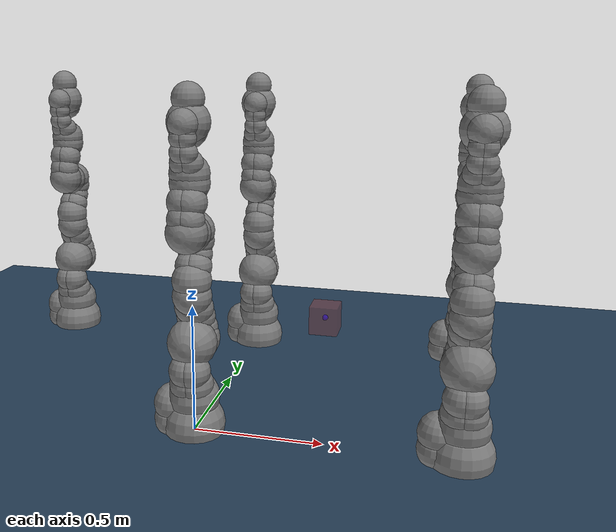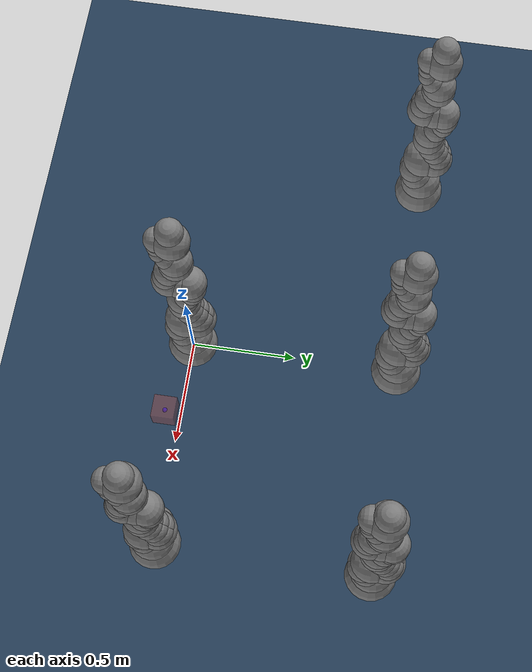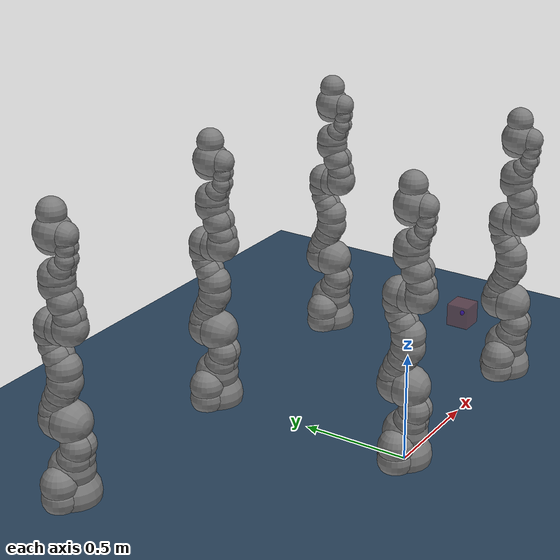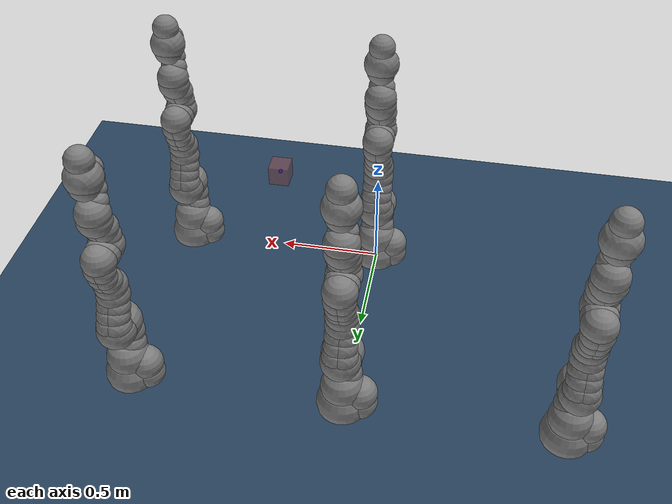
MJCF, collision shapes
<mujoco model="iiwa14 scene">
  <include file="combined_model.xml" />

  <statistic center="0.2 0 0.2" extent="1.0" />

  <visual>
    <headlight diffuse="0.6 0.6 0.6" ambient="0.3 0.3 0.3" specular="0 0 0" />
    <rgba haze="0.15 0.25 0.35 1" />
    <global azimuth="-120" elevation="-20" />
  </visual>

  <asset>
    <texture type="skybox" builtin="gradient" rgb1="0.3 0.5 0.7" rgb2="0 0 0" width="512" height="3072" />
    <texture type="2d" name="groundplane" builtin="checker" mark="edge" rgb1="0.2 0.3 0.4" rgb2="0.1 0.2 0.3" markrgb="0.8 0.8 0.8" width="300" height="300" />
    <material name="groundplane" texture="groundplane" texuniform="true" texrepeat="5 5" reflectance="0.2" />
  </asset>

  <worldbody>
    <light pos="0 0 1.5" dir="0 0 -1" directional="true" />
    <geom name="floor" size="0 0 0.05" type="plane" material="groundplane" />
    <body name="target" pos="0.5 0 .5" quat="0 1 0 0" mocap="true">
      <geom type="box" size=".05 .05 .05" contype="0" conaffinity="0" rgba=".6 .3 .3 .5" />
      <site type="sphere" size="0.01" rgba="0 0 1 1" group="1" />
    </body>
  </worldbody>
</mujoco>

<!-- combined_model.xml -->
<mujoco><compiler angle="radian" meshdir="assets" autolimits="true" />

  <option integrator="implicitfast" />

  <asset>
    <material class="iiwa" name="gray" rgba="0.4 0.4 0.4 1" />
    <material class="iiwa" name="light_gray" rgba="0.6 0.6 0.6 1" />
    <material class="iiwa" name="black" rgba="0 0 0 1" />
    <material class="iiwa" name="orange" rgba="1 0.423529 0.0392157 1" />

    <mesh file="link_0.obj" />
    <mesh file="link_1.obj" />
    <mesh file="link_2_orange.obj" />
    <mesh file="link_2_grey.obj" />
    <mesh file="link_3.obj" />
    <mesh file="band.obj" />
    <mesh file="kuka.obj" />
    <mesh file="link_4_orange.obj" />
    <mesh file="link_4_grey.obj" />
    <mesh file="link_5.obj" />
    <mesh file="link_6_orange.obj" />
    <mesh file="link_6_grey.obj" />
    <mesh file="link_7.obj" />
  </asset>

  <worldbody><body name="base_copy_0" childclass="iiwa" pos="0 0 0">
      <inertial mass="5" pos="-0.1 0 0.07" diaginertia="0.05 0.06 0.03" />
      <geom class="visual" mesh="link_0" />
      <geom class="collision" size="0.12" pos="0 0 0.03" />
      <geom class="collision" size="0.08" pos="-0.08 0 0.103" />
      <geom class="collision" size="0.08" pos="-0.08 0 0.04" />
      <geom class="collision" size="0.1" pos="0 0 0.14" />
      <body name="link1_copy_0" pos="0 0 0.1575">
        <inertial mass="5.76" pos="0 -0.03 0.12" diaginertia="0.0333 0.033 0.0123" />
        <joint name="joint1_copy_0" class="joint1" />
        <geom class="visual" mesh="link_1" />
        <geom class="collision" size="0.08" pos="0 0 -0.0005" />
        <geom class="collision" size="0.075" pos="0.01 -0.025 0.0425" />
        <geom class="collision" size="0.075" pos="-0.01 -0.025 0.0425" />
        <geom class="collision" size="0.07" pos="0.01 -0.045 0.1025" />
        <geom class="collision" size="0.07" pos="-0.01 -0.045 0.1025" />
        <body name="link2_copy_0" pos="0 0 0.2025" quat="0 0 1 1">
          <inertial mass="6.35" pos="0.0003 0.059 0.042" diaginertia="0.0305 0.0304 0.011" quat="0 0 1 1" />
          <joint name="joint2_copy_0" class="joint2" />
          <geom class="visual" material="orange" mesh="link_2_orange" />
          <geom class="visual" mesh="link_2_grey" />
          <geom class="collision" size="0.095" pos="0 0 -0.01" />
          <geom class="collision" size="0.09" pos="0 0 0.045" />
          <geom class="collision" size="0.07" pos="-0.01 0.04 0.054" />
          <geom class="collision" size="0.065" pos="-0.01 0.09 0.04" />
          <geom class="collision" size="0.065" pos="-0.01 0.13 0.02" />
          <geom class="collision" size="0.07" pos="0.01 0.04 0.054" />
          <geom class="collision" size="0.065" pos="0.01 0.09 0.04" />
          <geom class="collision" size="0.065" pos="0.01 0.13 0.02" />
          <geom class="collision" size="0.075" pos="0 0.18 0" />
          <body name="link3_copy_0" pos="0 0.2045 0" quat="0 0 1 1">
            <inertial mass="3.5" pos="0 0.03 0.13" diaginertia="0.025 0.0238 0.0076" />
            <joint name="joint3_copy_0" class="joint1" />
            <geom class="visual" mesh="link_3" />
            <geom class="visual" material="light_gray" mesh="band" />
            <geom class="visual" material="black" mesh="kuka" />
            <geom class="collision" size="0.075" pos="0 0 0.0355" />
            <geom class="collision" size="0.06" pos="0.01 0.023 0.0855" />
            <geom class="collision" size="0.055" pos="0.01 0.048 0.1255" />
            <geom class="collision" size="0.06" pos="0.01 0.056 0.1755" />
            <geom class="collision" size="0.06" pos="-0.01 0.023 0.0855" />
            <geom class="collision" size="0.055" pos="-0.01 0.048 0.1255" />
            <geom class="collision" size="0.06" pos="-0.01 0.056 0.1755" />
            <geom class="collision" size="0.075" pos="0 0.045 0.2155" />
            <geom class="collision" size="0.075" pos="0 0 0.2155" />
            <body name="link4_copy_0" pos="0 0 0.2155" quat="1 1 0 0">
              <inertial mass="3.5" pos="0 0.067 0.034" diaginertia="0.017 0.0164 0.006" quat="1 1 0 0" />
              <joint name="joint4_copy_0" class="joint2" />
              <geom class="visual" material="orange" mesh="link_4_orange" />
              <geom class="visual" mesh="link_4_grey" />
              <geom class="collision" size="0.078" pos="0 0.01 0.046" />
              <geom class="collision" size="0.06" pos="0.01 0.06 0.052" />
              <geom class="collision" size="0.065" pos="0.01 0.12 0.034" />
              <geom class="collision" size="0.06" pos="-0.01 0.06 0.052" />
              <geom class="collision" size="0.065" pos="-0.01 0.12 0.034" />
              <geom class="collision" size="0.075" pos="0 0.184 0" />
              <body name="link5_copy_0" pos="0 0.1845 0" quat="0 0 1 1">
                <inertial mass="3.5" pos="0.0001 0.021 0.076" diaginertia="0.01 0.0087 0.00449" />
                <joint name="joint5_copy_0" class="joint1" />
                <geom class="visual" mesh="link_5" />
                <geom class="visual" material="light_gray" mesh="band" />
                <geom class="visual" material="black" mesh="kuka" />
                <geom class="collision" size="0.075" pos="0 0 0.0335" />
                <geom class="collision" size="0.05" pos="-0.012 0.031 0.0755" />
                <geom class="collision" size="0.05" pos="0.012 0.031 0.0755" />
                <geom class="collision" size="0.04" pos="-0.012 0.06 0.1155" />
                <geom class="collision" size="0.04" pos="0.012 0.06 0.1155" />
                <geom class="collision" size="0.04" pos="-0.01 0.065 0.1655" />
                <geom class="collision" size="0.04" pos="0.01 0.065 0.1655" />
                <geom class="collision" size="0.035" pos="-0.012 0.065 0.1855" />
                <geom class="collision" size="0.035" pos="0.012 0.065 0.1855" />
                <body name="link6_copy_0" pos="0 0 0.2155" quat="1 1 0 0">
                  <inertial mass="1.8" pos="0 0.0006 0.0004" diaginertia="0.0049 0.0047 0.0036" quat="1 1 0 0" />
                  <joint name="joint6_copy_0" class="joint2" />
                  <geom class="visual" material="orange" mesh="link_6_orange" />
                  <geom class="visual" mesh="link_6_grey" />
                  <geom class="collision" size="0.055" pos="0 0 -0.059" />
                  <geom class="collision" size="0.065" pos="0 -0.03 0.011" />
                  <geom class="collision" size="0.08" />
                  <body name="link7_copy_0" pos="0 0.081 0" quat="0 0 1 1">
                    <inertial mass="1.2" pos="0 0 0.02" diaginertia="0.001 0.001 0.001" />
                    <joint name="joint7_copy_0" class="joint3" />
                    <geom class="visual" mesh="link_7" />
                    <geom class="collision" size="0.06" pos="0 0 0.001" />
                    <site pos="0 0 0.045" name="attachment_site_copy_0" />
                  </body>
                </body>
              </body>
            </body>
          </body>
        </body>
      </body>
    </body>
  <body name="base_copy_1" childclass="iiwa" pos="1 0 0">
      <inertial mass="5" pos="-0.1 0 0.07" diaginertia="0.05 0.06 0.03" />
      <geom class="visual" mesh="link_0" />
      <geom class="collision" size="0.12" pos="0 0 0.03" />
      <geom class="collision" size="0.08" pos="-0.08 0 0.103" />
      <geom class="collision" size="0.08" pos="-0.08 0 0.04" />
      <geom class="collision" size="0.1" pos="0 0 0.14" />
      <body name="link1_copy_1" pos="0 0 0.1575">
        <inertial mass="5.76" pos="0 -0.03 0.12" diaginertia="0.0333 0.033 0.0123" />
        <joint name="joint1_copy_1" class="joint1" />
        <geom class="visual" mesh="link_1" />
        <geom class="collision" size="0.08" pos="0 0 -0.0005" />
        <geom class="collision" size="0.075" pos="0.01 -0.025 0.0425" />
        <geom class="collision" size="0.075" pos="-0.01 -0.025 0.0425" />
        <geom class="collision" size="0.07" pos="0.01 -0.045 0.1025" />
        <geom class="collision" size="0.07" pos="-0.01 -0.045 0.1025" />
        <body name="link2_copy_1" pos="0 0 0.2025" quat="0 0 1 1">
          <inertial mass="6.35" pos="0.0003 0.059 0.042" diaginertia="0.0305 0.0304 0.011" quat="0 0 1 1" />
          <joint name="joint2_copy_1" class="joint2" />
          <geom class="visual" material="orange" mesh="link_2_orange" />
          <geom class="visual" mesh="link_2_grey" />
          <geom class="collision" size="0.095" pos="0 0 -0.01" />
          <geom class="collision" size="0.09" pos="0 0 0.045" />
          <geom class="collision" size="0.07" pos="-0.01 0.04 0.054" />
          <geom class="collision" size="0.065" pos="-0.01 0.09 0.04" />
          <geom class="collision" size="0.065" pos="-0.01 0.13 0.02" />
          <geom class="collision" size="0.07" pos="0.01 0.04 0.054" />
          <geom class="collision" size="0.065" pos="0.01 0.09 0.04" />
          <geom class="collision" size="0.065" pos="0.01 0.13 0.02" />
          <geom class="collision" size="0.075" pos="0 0.18 0" />
          <body name="link3_copy_1" pos="0 0.2045 0" quat="0 0 1 1">
            <inertial mass="3.5" pos="0 0.03 0.13" diaginertia="0.025 0.0238 0.0076" />
            <joint name="joint3_copy_1" class="joint1" />
            <geom class="visual" mesh="link_3" />
            <geom class="visual" material="light_gray" mesh="band" />
            <geom class="visual" material="black" mesh="kuka" />
            <geom class="collision" size="0.075" pos="0 0 0.0355" />
            <geom class="collision" size="0.06" pos="0.01 0.023 0.0855" />
            <geom class="collision" size="0.055" pos="0.01 0.048 0.1255" />
            <geom class="collision" size="0.06" pos="0.01 0.056 0.1755" />
            <geom class="collision" size="0.06" pos="-0.01 0.023 0.0855" />
            <geom class="collision" size="0.055" pos="-0.01 0.048 0.1255" />
            <geom class="collision" size="0.06" pos="-0.01 0.056 0.1755" />
            <geom class="collision" size="0.075" pos="0 0.045 0.2155" />
            <geom class="collision" size="0.075" pos="0 0 0.2155" />
            <body name="link4_copy_1" pos="0 0 0.2155" quat="1 1 0 0">
              <inertial mass="3.5" pos="0 0.067 0.034" diaginertia="0.017 0.0164 0.006" quat="1 1 0 0" />
              <joint name="joint4_copy_1" class="joint2" />
              <geom class="visual" material="orange" mesh="link_4_orange" />
              <geom class="visual" mesh="link_4_grey" />
              <geom class="collision" size="0.078" pos="0 0.01 0.046" />
              <geom class="collision" size="0.06" pos="0.01 0.06 0.052" />
              <geom class="collision" size="0.065" pos="0.01 0.12 0.034" />
              <geom class="collision" size="0.06" pos="-0.01 0.06 0.052" />
              <geom class="collision" size="0.065" pos="-0.01 0.12 0.034" />
              <geom class="collision" size="0.075" pos="0 0.184 0" />
              <body name="link5_copy_1" pos="0 0.1845 0" quat="0 0 1 1">
                <inertial mass="3.5" pos="0.0001 0.021 0.076" diaginertia="0.01 0.0087 0.00449" />
                <joint name="joint5_copy_1" class="joint1" />
                <geom class="visual" mesh="link_5" />
                <geom class="visual" material="light_gray" mesh="band" />
                <geom class="visual" material="black" mesh="kuka" />
                <geom class="collision" size="0.075" pos="0 0 0.0335" />
                <geom class="collision" size="0.05" pos="-0.012 0.031 0.0755" />
                <geom class="collision" size="0.05" pos="0.012 0.031 0.0755" />
                <geom class="collision" size="0.04" pos="-0.012 0.06 0.1155" />
                <geom class="collision" size="0.04" pos="0.012 0.06 0.1155" />
                <geom class="collision" size="0.04" pos="-0.01 0.065 0.1655" />
                <geom class="collision" size="0.04" pos="0.01 0.065 0.1655" />
                <geom class="collision" size="0.035" pos="-0.012 0.065 0.1855" />
                <geom class="collision" size="0.035" pos="0.012 0.065 0.1855" />
                <body name="link6_copy_1" pos="0 0 0.2155" quat="1 1 0 0">
                  <inertial mass="1.8" pos="0 0.0006 0.0004" diaginertia="0.0049 0.0047 0.0036" quat="1 1 0 0" />
                  <joint name="joint6_copy_1" class="joint2" />
                  <geom class="visual" material="orange" mesh="link_6_orange" />
                  <geom class="visual" mesh="link_6_grey" />
                  <geom class="collision" size="0.055" pos="0 0 -0.059" />
                  <geom class="collision" size="0.065" pos="0 -0.03 0.011" />
                  <geom class="collision" size="0.08" />
                  <body name="link7_copy_1" pos="0 0.081 0" quat="0 0 1 1">
                    <inertial mass="1.2" pos="0 0 0.02" diaginertia="0.001 0.001 0.001" />
                    <joint name="joint7_copy_1" class="joint3" />
                    <geom class="visual" mesh="link_7" />
                    <geom class="collision" size="0.06" pos="0 0 0.001" />
                    <site pos="0 0 0.045" name="attachment_site_copy_1" />
                  </body>
                </body>
              </body>
            </body>
          </body>
        </body>
      </body>
    </body>
  <body name="base_copy_2" childclass="iiwa" pos="1 1 0">
      <inertial mass="5" pos="-0.1 0 0.07" diaginertia="0.05 0.06 0.03" />
      <geom class="visual" mesh="link_0" />
      <geom class="collision" size="0.12" pos="0 0 0.03" />
      <geom class="collision" size="0.08" pos="-0.08 0 0.103" />
      <geom class="collision" size="0.08" pos="-0.08 0 0.04" />
      <geom class="collision" size="0.1" pos="0 0 0.14" />
      <body name="link1_copy_2" pos="0 0 0.1575">
        <inertial mass="5.76" pos="0 -0.03 0.12" diaginertia="0.0333 0.033 0.0123" />
        <joint name="joint1_copy_2" class="joint1" />
        <geom class="visual" mesh="link_1" />
        <geom class="collision" size="0.08" pos="0 0 -0.0005" />
        <geom class="collision" size="0.075" pos="0.01 -0.025 0.0425" />
        <geom class="collision" size="0.075" pos="-0.01 -0.025 0.0425" />
        <geom class="collision" size="0.07" pos="0.01 -0.045 0.1025" />
        <geom class="collision" size="0.07" pos="-0.01 -0.045 0.1025" />
        <body name="link2_copy_2" pos="0 0 0.2025" quat="0 0 1 1">
          <inertial mass="6.35" pos="0.0003 0.059 0.042" diaginertia="0.0305 0.0304 0.011" quat="0 0 1 1" />
          <joint name="joint2_copy_2" class="joint2" />
          <geom class="visual" material="orange" mesh="link_2_orange" />
          <geom class="visual" mesh="link_2_grey" />
          <geom class="collision" size="0.095" pos="0 0 -0.01" />
          <geom class="collision" size="0.09" pos="0 0 0.045" />
          <geom class="collision" size="0.07" pos="-0.01 0.04 0.054" />
          <geom class="collision" size="0.065" pos="-0.01 0.09 0.04" />
          <geom class="collision" size="0.065" pos="-0.01 0.13 0.02" />
          <geom class="collision" size="0.07" pos="0.01 0.04 0.054" />
          <geom class="collision" size="0.065" pos="0.01 0.09 0.04" />
          <geom class="collision" size="0.065" pos="0.01 0.13 0.02" />
          <geom class="collision" size="0.075" pos="0 0.18 0" />
          <body name="link3_copy_2" pos="0 0.2045 0" quat="0 0 1 1">
            <inertial mass="3.5" pos="0 0.03 0.13" diaginertia="0.025 0.0238 0.0076" />
            <joint name="joint3_copy_2" class="joint1" />
            <geom class="visual" mesh="link_3" />
            <geom class="visual" material="light_gray" mesh="band" />
            <geom class="visual" material="black" mesh="kuka" />
            <geom class="collision" size="0.075" pos="0 0 0.0355" />
            <geom class="collision" size="0.06" pos="0.01 0.023 0.0855" />
            <geom class="collision" size="0.055" pos="0.01 0.048 0.1255" />
            <geom class="collision" size="0.06" pos="0.01 0.056 0.1755" />
            <geom class="collision" size="0.06" pos="-0.01 0.023 0.0855" />
            <geom class="collision" size="0.055" pos="-0.01 0.048 0.1255" />
            <geom class="collision" size="0.06" pos="-0.01 0.056 0.1755" />
            <geom class="collision" size="0.075" pos="0 0.045 0.2155" />
            <geom class="collision" size="0.075" pos="0 0 0.2155" />
            <body name="link4_copy_2" pos="0 0 0.2155" quat="1 1 0 0">
              <inertial mass="3.5" pos="0 0.067 0.034" diaginertia="0.017 0.0164 0.006" quat="1 1 0 0" />
              <joint name="joint4_copy_2" class="joint2" />
              <geom class="visual" material="orange" mesh="link_4_orange" />
              <geom class="visual" mesh="link_4_grey" />
              <geom class="collision" size="0.078" pos="0 0.01 0.046" />
              <geom class="collision" size="0.06" pos="0.01 0.06 0.052" />
              <geom class="collision" size="0.065" pos="0.01 0.12 0.034" />
              <geom class="collision" size="0.06" pos="-0.01 0.06 0.052" />
              <geom class="collision" size="0.065" pos="-0.01 0.12 0.034" />
              <geom class="collision" size="0.075" pos="0 0.184 0" />
              <body name="link5_copy_2" pos="0 0.1845 0" quat="0 0 1 1">
                <inertial mass="3.5" pos="0.0001 0.021 0.076" diaginertia="0.01 0.0087 0.00449" />
                <joint name="joint5_copy_2" class="joint1" />
                <geom class="visual" mesh="link_5" />
                <geom class="visual" material="light_gray" mesh="band" />
                <geom class="visual" material="black" mesh="kuka" />
                <geom class="collision" size="0.075" pos="0 0 0.0335" />
                <geom class="collision" size="0.05" pos="-0.012 0.031 0.0755" />
                <geom class="collision" size="0.05" pos="0.012 0.031 0.0755" />
                <geom class="collision" size="0.04" pos="-0.012 0.06 0.1155" />
                <geom class="collision" size="0.04" pos="0.012 0.06 0.1155" />
                <geom class="collision" size="0.04" pos="-0.01 0.065 0.1655" />
                <geom class="collision" size="0.04" pos="0.01 0.065 0.1655" />
                <geom class="collision" size="0.035" pos="-0.012 0.065 0.1855" />
                <geom class="collision" size="0.035" pos="0.012 0.065 0.1855" />
                <body name="link6_copy_2" pos="0 0 0.2155" quat="1 1 0 0">
                  <inertial mass="1.8" pos="0 0.0006 0.0004" diaginertia="0.0049 0.0047 0.0036" quat="1 1 0 0" />
                  <joint name="joint6_copy_2" class="joint2" />
                  <geom class="visual" material="orange" mesh="link_6_orange" />
                  <geom class="visual" mesh="link_6_grey" />
                  <geom class="collision" size="0.055" pos="0 0 -0.059" />
                  <geom class="collision" size="0.065" pos="0 -0.03 0.011" />
                  <geom class="collision" size="0.08" />
                  <body name="link7_copy_2" pos="0 0.081 0" quat="0 0 1 1">
                    <inertial mass="1.2" pos="0 0 0.02" diaginertia="0.001 0.001 0.001" />
                    <joint name="joint7_copy_2" class="joint3" />
                    <geom class="visual" mesh="link_7" />
                    <geom class="collision" size="0.06" pos="0 0 0.001" />
                    <site pos="0 0 0.045" name="attachment_site_copy_2" />
                  </body>
                </body>
              </body>
            </body>
          </body>
        </body>
      </body>
    </body>
  <body name="base_copy_3" childclass="iiwa" pos="0 1 0">
      <inertial mass="5" pos="-0.1 0 0.07" diaginertia="0.05 0.06 0.03" />
      <geom class="visual" mesh="link_0" />
      <geom class="collision" size="0.12" pos="0 0 0.03" />
      <geom class="collision" size="0.08" pos="-0.08 0 0.103" />
      <geom class="collision" size="0.08" pos="-0.08 0 0.04" />
      <geom class="collision" size="0.1" pos="0 0 0.14" />
      <body name="link1_copy_3" pos="0 0 0.1575">
        <inertial mass="5.76" pos="0 -0.03 0.12" diaginertia="0.0333 0.033 0.0123" />
        <joint name="joint1_copy_3" class="joint1" />
        <geom class="visual" mesh="link_1" />
        <geom class="collision" size="0.08" pos="0 0 -0.0005" />
        <geom class="collision" size="0.075" pos="0.01 -0.025 0.0425" />
        <geom class="collision" size="0.075" pos="-0.01 -0.025 0.0425" />
        <geom class="collision" size="0.07" pos="0.01 -0.045 0.1025" />
        <geom class="collision" size="0.07" pos="-0.01 -0.045 0.1025" />
        <body name="link2_copy_3" pos="0 0 0.2025" quat="0 0 1 1">
          <inertial mass="6.35" pos="0.0003 0.059 0.042" diaginertia="0.0305 0.0304 0.011" quat="0 0 1 1" />
          <joint name="joint2_copy_3" class="joint2" />
          <geom class="visual" material="orange" mesh="link_2_orange" />
          <geom class="visual" mesh="link_2_grey" />
          <geom class="collision" size="0.095" pos="0 0 -0.01" />
          <geom class="collision" size="0.09" pos="0 0 0.045" />
          <geom class="collision" size="0.07" pos="-0.01 0.04 0.054" />
          <geom class="collision" size="0.065" pos="-0.01 0.09 0.04" />
          <geom class="collision" size="0.065" pos="-0.01 0.13 0.02" />
          <geom class="collision" size="0.07" pos="0.01 0.04 0.054" />
          <geom class="collision" size="0.065" pos="0.01 0.09 0.04" />
          <geom class="collision" size="0.065" pos="0.01 0.13 0.02" />
          <geom class="collision" size="0.075" pos="0 0.18 0" />
          <body name="link3_copy_3" pos="0 0.2045 0" quat="0 0 1 1">
            <inertial mass="3.5" pos="0 0.03 0.13" diaginertia="0.025 0.0238 0.0076" />
            <joint name="joint3_copy_3" class="joint1" />
            <geom class="visual" mesh="link_3" />
            <geom class="visual" material="light_gray" mesh="band" />
            <geom class="visual" material="black" mesh="kuka" />
            <geom class="collision" size="0.075" pos="0 0 0.0355" />
            <geom class="collision" size="0.06" pos="0.01 0.023 0.0855" />
            <geom class="collision" size="0.055" pos="0.01 0.048 0.1255" />
            <geom class="collision" size="0.06" pos="0.01 0.056 0.1755" />
            <geom class="collision" size="0.06" pos="-0.01 0.023 0.0855" />
            <geom class="collision" size="0.055" pos="-0.01 0.048 0.1255" />
            <geom class="collision" size="0.06" pos="-0.01 0.056 0.1755" />
            <geom class="collision" size="0.075" pos="0 0.045 0.2155" />
            <geom class="collision" size="0.075" pos="0 0 0.2155" />
            <body name="link4_copy_3" pos="0 0 0.2155" quat="1 1 0 0">
              <inertial mass="3.5" pos="0 0.067 0.034" diaginertia="0.017 0.0164 0.006" quat="1 1 0 0" />
              <joint name="joint4_copy_3" class="joint2" />
              <geom class="visual" material="orange" mesh="link_4_orange" />
              <geom class="visual" mesh="link_4_grey" />
              <geom class="collision" size="0.078" pos="0 0.01 0.046" />
              <geom class="collision" size="0.06" pos="0.01 0.06 0.052" />
              <geom class="collision" size="0.065" pos="0.01 0.12 0.034" />
              <geom class="collision" size="0.06" pos="-0.01 0.06 0.052" />
              <geom class="collision" size="0.065" pos="-0.01 0.12 0.034" />
              <geom class="collision" size="0.075" pos="0 0.184 0" />
              <body name="link5_copy_3" pos="0 0.1845 0" quat="0 0 1 1">
                <inertial mass="3.5" pos="0.0001 0.021 0.076" diaginertia="0.01 0.0087 0.00449" />
                <joint name="joint5_copy_3" class="joint1" />
                <geom class="visual" mesh="link_5" />
                <geom class="visual" material="light_gray" mesh="band" />
                <geom class="visual" material="black" mesh="kuka" />
                <geom class="collision" size="0.075" pos="0 0 0.0335" />
                <geom class="collision" size="0.05" pos="-0.012 0.031 0.0755" />
                <geom class="collision" size="0.05" pos="0.012 0.031 0.0755" />
                <geom class="collision" size="0.04" pos="-0.012 0.06 0.1155" />
                <geom class="collision" size="0.04" pos="0.012 0.06 0.1155" />
                <geom class="collision" size="0.04" pos="-0.01 0.065 0.1655" />
                <geom class="collision" size="0.04" pos="0.01 0.065 0.1655" />
                <geom class="collision" size="0.035" pos="-0.012 0.065 0.1855" />
                <geom class="collision" size="0.035" pos="0.012 0.065 0.1855" />
                <body name="link6_copy_3" pos="0 0 0.2155" quat="1 1 0 0">
                  <inertial mass="1.8" pos="0 0.0006 0.0004" diaginertia="0.0049 0.0047 0.0036" quat="1 1 0 0" />
                  <joint name="joint6_copy_3" class="joint2" />
                  <geom class="visual" material="orange" mesh="link_6_orange" />
                  <geom class="visual" mesh="link_6_grey" />
                  <geom class="collision" size="0.055" pos="0 0 -0.059" />
                  <geom class="collision" size="0.065" pos="0 -0.03 0.011" />
                  <geom class="collision" size="0.08" />
                  <body name="link7_copy_3" pos="0 0.081 0" quat="0 0 1 1">
                    <inertial mass="1.2" pos="0 0 0.02" diaginertia="0.001 0.001 0.001" />
                    <joint name="joint7_copy_3" class="joint3" />
                    <geom class="visual" mesh="link_7" />
                    <geom class="collision" size="0.06" pos="0 0 0.001" />
                    <site pos="0 0 0.045" name="attachment_site_copy_3" />
                  </body>
                </body>
              </body>
            </body>
          </body>
        </body>
      </body>
    </body>
  <body name="base_copy_4" childclass="iiwa" pos="-1 1 0">
      <inertial mass="5" pos="-0.1 0 0.07" diaginertia="0.05 0.06 0.03" />
      <geom class="visual" mesh="link_0" />
      <geom class="collision" size="0.12" pos="0 0 0.03" />
      <geom class="collision" size="0.08" pos="-0.08 0 0.103" />
      <geom class="collision" size="0.08" pos="-0.08 0 0.04" />
      <geom class="collision" size="0.1" pos="0 0 0.14" />
      <body name="link1_copy_4" pos="0 0 0.1575">
        <inertial mass="5.76" pos="0 -0.03 0.12" diaginertia="0.0333 0.033 0.0123" />
        <joint name="joint1_copy_4" class="joint1" />
        <geom class="visual" mesh="link_1" />
        <geom class="collision" size="0.08" pos="0 0 -0.0005" />
        <geom class="collision" size="0.075" pos="0.01 -0.025 0.0425" />
        <geom class="collision" size="0.075" pos="-0.01 -0.025 0.0425" />
        <geom class="collision" size="0.07" pos="0.01 -0.045 0.1025" />
        <geom class="collision" size="0.07" pos="-0.01 -0.045 0.1025" />
        <body name="link2_copy_4" pos="0 0 0.2025" quat="0 0 1 1">
          <inertial mass="6.35" pos="0.0003 0.059 0.042" diaginertia="0.0305 0.0304 0.011" quat="0 0 1 1" />
          <joint name="joint2_copy_4" class="joint2" />
          <geom class="visual" material="orange" mesh="link_2_orange" />
          <geom class="visual" mesh="link_2_grey" />
          <geom class="collision" size="0.095" pos="0 0 -0.01" />
          <geom class="collision" size="0.09" pos="0 0 0.045" />
          <geom class="collision" size="0.07" pos="-0.01 0.04 0.054" />
          <geom class="collision" size="0.065" pos="-0.01 0.09 0.04" />
          <geom class="collision" size="0.065" pos="-0.01 0.13 0.02" />
          <geom class="collision" size="0.07" pos="0.01 0.04 0.054" />
          <geom class="collision" size="0.065" pos="0.01 0.09 0.04" />
          <geom class="collision" size="0.065" pos="0.01 0.13 0.02" />
          <geom class="collision" size="0.075" pos="0 0.18 0" />
          <body name="link3_copy_4" pos="0 0.2045 0" quat="0 0 1 1">
            <inertial mass="3.5" pos="0 0.03 0.13" diaginertia="0.025 0.0238 0.0076" />
            <joint name="joint3_copy_4" class="joint1" />
            <geom class="visual" mesh="link_3" />
            <geom class="visual" material="light_gray" mesh="band" />
            <geom class="visual" material="black" mesh="kuka" />
            <geom class="collision" size="0.075" pos="0 0 0.0355" />
            <geom class="collision" size="0.06" pos="0.01 0.023 0.0855" />
            <geom class="collision" size="0.055" pos="0.01 0.048 0.1255" />
            <geom class="collision" size="0.06" pos="0.01 0.056 0.1755" />
            <geom class="collision" size="0.06" pos="-0.01 0.023 0.0855" />
            <geom class="collision" size="0.055" pos="-0.01 0.048 0.1255" />
            <geom class="collision" size="0.06" pos="-0.01 0.056 0.1755" />
            <geom class="collision" size="0.075" pos="0 0.045 0.2155" />
            <geom class="collision" size="0.075" pos="0 0 0.2155" />
            <body name="link4_copy_4" pos="0 0 0.2155" quat="1 1 0 0">
              <inertial mass="3.5" pos="0 0.067 0.034" diaginertia="0.017 0.0164 0.006" quat="1 1 0 0" />
              <joint name="joint4_copy_4" class="joint2" />
              <geom class="visual" material="orange" mesh="link_4_orange" />
              <geom class="visual" mesh="link_4_grey" />
              <geom class="collision" size="0.078" pos="0 0.01 0.046" />
              <geom class="collision" size="0.06" pos="0.01 0.06 0.052" />
              <geom class="collision" size="0.065" pos="0.01 0.12 0.034" />
              <geom class="collision" size="0.06" pos="-0.01 0.06 0.052" />
              <geom class="collision" size="0.065" pos="-0.01 0.12 0.034" />
              <geom class="collision" size="0.075" pos="0 0.184 0" />
              <body name="link5_copy_4" pos="0 0.1845 0" quat="0 0 1 1">
                <inertial mass="3.5" pos="0.0001 0.021 0.076" diaginertia="0.01 0.0087 0.00449" />
                <joint name="joint5_copy_4" class="joint1" />
                <geom class="visual" mesh="link_5" />
                <geom class="visual" material="light_gray" mesh="band" />
                <geom class="visual" material="black" mesh="kuka" />
                <geom class="collision" size="0.075" pos="0 0 0.0335" />
                <geom class="collision" size="0.05" pos="-0.012 0.031 0.0755" />
                <geom class="collision" size="0.05" pos="0.012 0.031 0.0755" />
                <geom class="collision" size="0.04" pos="-0.012 0.06 0.1155" />
                <geom class="collision" size="0.04" pos="0.012 0.06 0.1155" />
                <geom class="collision" size="0.04" pos="-0.01 0.065 0.1655" />
                <geom class="collision" size="0.04" pos="0.01 0.065 0.1655" />
                <geom class="collision" size="0.035" pos="-0.012 0.065 0.1855" />
                <geom class="collision" size="0.035" pos="0.012 0.065 0.1855" />
                <body name="link6_copy_4" pos="0 0 0.2155" quat="1 1 0 0">
                  <inertial mass="1.8" pos="0 0.0006 0.0004" diaginertia="0.0049 0.0047 0.0036" quat="1 1 0 0" />
                  <joint name="joint6_copy_4" class="joint2" />
                  <geom class="visual" material="orange" mesh="link_6_orange" />
                  <geom class="visual" mesh="link_6_grey" />
                  <geom class="collision" size="0.055" pos="0 0 -0.059" />
                  <geom class="collision" size="0.065" pos="0 -0.03 0.011" />
                  <geom class="collision" size="0.08" />
                  <body name="link7_copy_4" pos="0 0.081 0" quat="0 0 1 1">
                    <inertial mass="1.2" pos="0 0 0.02" diaginertia="0.001 0.001 0.001" />
                    <joint name="joint7_copy_4" class="joint3" />
                    <geom class="visual" mesh="link_7" />
                    <geom class="collision" size="0.06" pos="0 0 0.001" />
                    <site pos="0 0 0.045" name="attachment_site_copy_4" />
                  </body>
                </body>
              </body>
            </body>
          </body>
        </body>
      </body>
    </body>
  </worldbody><actuator><general name="joint1_copy_0" joint="joint1_copy_0" class="joint1" />
    <general name="joint2_copy_0" joint="joint2_copy_0" class="joint2" />
    <general name="joint3_copy_0" joint="joint3_copy_0" class="joint1" />
    <general name="joint4_copy_0" joint="joint4_copy_0" class="joint2" />
    <general name="joint5_copy_0" joint="joint5_copy_0" class="joint1" />
    <general name="joint6_copy_0" joint="joint6_copy_0" class="joint2" />
    <general name="joint7_copy_0" joint="joint7_copy_0" class="joint3" />
  <general name="joint1_copy_1" joint="joint1_copy_1" class="joint1" />
    <general name="joint2_copy_1" joint="joint2_copy_1" class="joint2" />
    <general name="joint3_copy_1" joint="joint3_copy_1" class="joint1" />
    <general name="joint4_copy_1" joint="joint4_copy_1" class="joint2" />
    <general name="joint5_copy_1" joint="joint5_copy_1" class="joint1" />
    <general name="joint6_copy_1" joint="joint6_copy_1" class="joint2" />
    <general name="joint7_copy_1" joint="joint7_copy_1" class="joint3" />
  <general name="joint1_copy_2" joint="joint1_copy_2" class="joint1" />
    <general name="joint2_copy_2" joint="joint2_copy_2" class="joint2" />
    <general name="joint3_copy_2" joint="joint3_copy_2" class="joint1" />
    <general name="joint4_copy_2" joint="joint4_copy_2" class="joint2" />
    <general name="joint5_copy_2" joint="joint5_copy_2" class="joint1" />
    <general name="joint6_copy_2" joint="joint6_copy_2" class="joint2" />
    <general name="joint7_copy_2" joint="joint7_copy_2" class="joint3" />
  <general name="joint1_copy_3" joint="joint1_copy_3" class="joint1" />
    <general name="joint2_copy_3" joint="joint2_copy_3" class="joint2" />
    <general name="joint3_copy_3" joint="joint3_copy_3" class="joint1" />
    <general name="joint4_copy_3" joint="joint4_copy_3" class="joint2" />
    <general name="joint5_copy_3" joint="joint5_copy_3" class="joint1" />
    <general name="joint6_copy_3" joint="joint6_copy_3" class="joint2" />
    <general name="joint7_copy_3" joint="joint7_copy_3" class="joint3" />
  <general name="joint1_copy_4" joint="joint1_copy_4" class="joint1" />
    <general name="joint2_copy_4" joint="joint2_copy_4" class="joint2" />
    <general name="joint3_copy_4" joint="joint3_copy_4" class="joint1" />
    <general name="joint4_copy_4" joint="joint4_copy_4" class="joint2" />
    <general name="joint5_copy_4" joint="joint5_copy_4" class="joint1" />
    <general name="joint6_copy_4" joint="joint6_copy_4" class="joint2" />
    <general name="joint7_copy_4" joint="joint7_copy_4" class="joint3" />
  </actuator><keyframe>
    <key name="home" qpos="0 0 0 -1.5708 0 1.5708 0 0 0 0 -1.5708 0 1.5708 0 0 0 0 -1.5708 0 1.5708 0 0 0 0 -1.5708 0 1.5708 0 0 0 0 -1.5708 0 1.5708 0" ctrl="0 0 0 -1.5708 0 1.5708 0 0 0 0 -1.5708 0 1.5708 0 0 0 0 -1.5708 0 1.5708 0 0 0 0 -1.5708 0 1.5708 0 0 0 0 -1.5708 0 1.5708 0" />
  </keyframe>
<contact><exclude body1="base_copy_0" body2="link1_copy_0" />
  <exclude body1="base_copy_1" body2="link1_copy_1" />
  <exclude body1="base_copy_2" body2="link1_copy_2" />
  <exclude body1="base_copy_3" body2="link1_copy_3" />
  <exclude body1="base_copy_4" body2="link1_copy_4" />
  </contact><default>
    <default class="iiwa">
      <material specular="0.5" shininess="0.25" />
      <joint axis="0 0 1" />
      <general gaintype="fixed" biastype="affine" gainprm="2000" biasprm="0 -2000 -200" />
      <default class="joint1">
        <joint range="-2.96706 2.96706" />
        <general ctrlrange="-2.96706 2.96706" />
        <default class="joint2">
          <joint range="-2.0944 2.0944" />
          <general ctrlrange="-2.0944 2.0944" />
        </default>
      </default>
      <default class="joint3">
        <joint range="-3.05433 3.05433" />
        <general ctrlrange="-3.05433 3.05433" />
      </default>
      <default class="visual">
        <geom type="mesh" contype="0" conaffinity="0" group="2" material="gray" />
      </default>
      <default class="collision">
        <geom group="3" />
      </default>
      <site size="0.001" rgba="1 0 0 1" group="4" />
    </default>
  </default>

  </mujoco>
